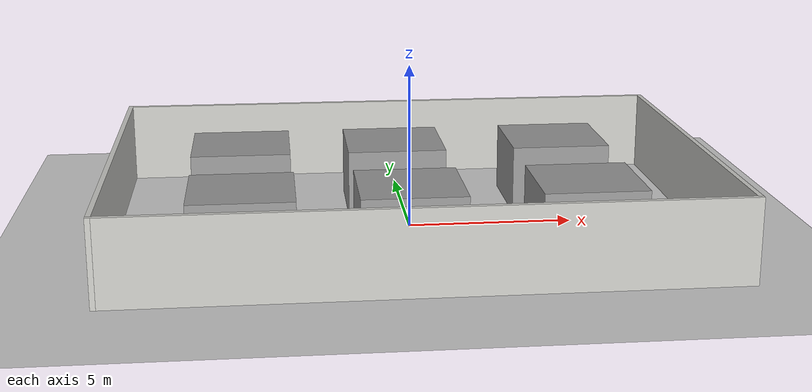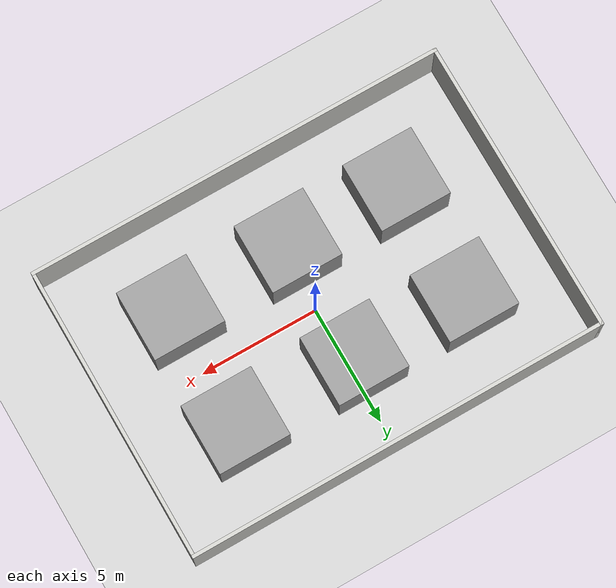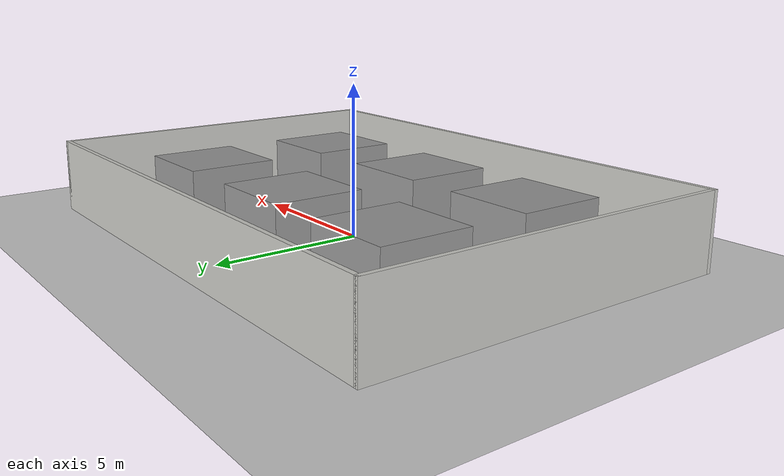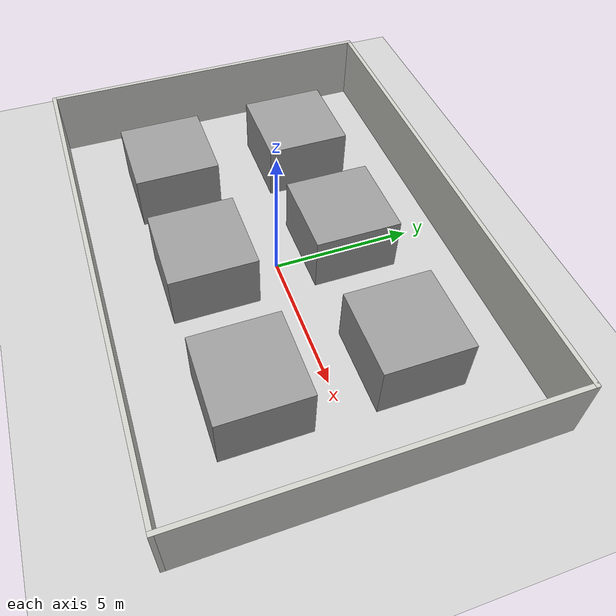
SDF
<sdf version="1.7">
 <world name="default">
  <light name="sun" type="directional">
   <pose>0 0 10 0 -0 0</pose>
   <diffuse>0.8 0.8 0.8 1</diffuse>
   <specular>0.2 0.2 0.2 1</specular>
   <attenuation>
    <range>1000</range>
    <constant>0.9</constant>
    <linear>0.01</linear>
    <quadratic>0.001</quadratic>
   </attenuation>
   <direction>-0.5 0.1 -0.9</direction>
   <spot><inner_angle>0</inner_angle><outer_angle>0</outer_angle><falloff>0</falloff></spot>
  </light>
  <model name="ground_plane">
   <static>1</static>
   <link name="link">
    <collision name="collision">
     <geometry><plane><normal>0 0 1</normal><size>100 100</size></plane></geometry>
     <surface><friction><ode><mu>100</mu><mu2>50</mu2></ode></friction></surface>
    </collision>
    <visual name="visual">
     <cast_shadows>0</cast_shadows>
     <geometry><plane><normal>0 0 1</normal><size>100 100</size></plane></geometry>
     <material>
      <script><uri>file://media/materials/scripts/gazebo.material</uri><name>Gazebo/Grey</name></script>
     </material>
    </visual>
   </link>
  </model>
  <gravity>0 0 -9.8</gravity>
  <magnetic_field>6e-06 2.3e-05 -4.2e-05</magnetic_field>
  <atmosphere type="adiabatic"/>
  <physics type="ode">
   <max_step_size>0.001</max_step_size>
   <real_time_factor>1</real_time_factor>
   <real_time_update_rate>1000</real_time_update_rate>
  </physics>
  <scene><ambient>0.4 0.4 0.4 1</ambient><background>0.7 0.7 0.7 1</background><shadows>1</shadows></scene>
  <audio><device>default</device></audio>
  <spherical_coordinates>
   <surface_model>EARTH_WGS84</surface_model>
   <latitude_deg>0</latitude_deg>
   <longitude_deg>0</longitude_deg>
   <elevation>0</elevation>
   <heading_deg>0</heading_deg>
  </spherical_coordinates>
  <model name="square3_small">
   <pose>-0.026682 0.054218 0 0 -0 0</pose>
   <link name="Wall_19">
    <collision name="Wall_19_Collision">
     <geometry><box><size>17.75 0.15 2.5</size></box></geometry>
     <pose>0 0 1.25 0 -0 0</pose>
    </collision>
    <visual name="Wall_19_Visual">
     <pose>0 0 1.25 0 -0 0</pose>
     <geometry><box><size>17.75 0.15 2.5</size></box></geometry>
     <material>
      <script><uri>file://media/materials/scripts/gazebo.material</uri><name>Gazebo/CeilingTiled</name></script>
      <ambient>0.921569 0.807843 0.615686 1</ambient>
     </material>
     <meta><layer>0</layer></meta>
    </visual>
    <pose>-0 6.175 0 0 -0 0</pose>
   </link>
   <link name="Wall_20">
    <collision name="Wall_20_Collision">
     <geometry><box><size>12.5 0.15 2.5</size></box></geometry>
     <pose>0 0 1.25 0 -0 0</pose>
    </collision>
    <visual name="Wall_20_Visual">
     <pose>0 0 1.25 0 -0 0</pose>
     <geometry><box><size>12.5 0.15 2.5</size></box></geometry>
     <material>
      <script><uri>file://media/materials/scripts/gazebo.material</uri><name>Gazebo/CeilingTiled</name></script>
      <ambient>0.921569 0.807843 0.615686 1</ambient>
     </material>
     <meta><layer>0</layer></meta>
    </visual>
    <pose>8.8 0 0 0 -0 -1.5708</pose>
   </link>
   <link name="Wall_21">
    <collision name="Wall_21_Collision">
     <geometry><box><size>17.75 0.15 2.5</size></box></geometry>
     <pose>0 0 1.25 0 -0 0</pose>
    </collision>
    <visual name="Wall_21_Visual">
     <pose>0 0 1.25 0 -0 0</pose>
     <geometry><box><size>17.75 0.15 2.5</size></box></geometry>
     <material>
      <script><uri>file://media/materials/scripts/gazebo.material</uri><name>Gazebo/CeilingTiled</name></script>
      <ambient>0.921569 0.807843 0.615686 1</ambient>
     </material>
     <meta><layer>0</layer></meta>
    </visual>
    <pose>-0 -6.175 0 0 -0 3.14159</pose>
   </link>
   <link name="Wall_22">
    <collision name="Wall_22_Collision">
     <geometry><box><size>12.5 0.15 2.5</size></box></geometry>
     <pose>0 0 1.25 0 -0 0</pose>
    </collision>
    <visual name="Wall_22_Visual">
     <pose>0 0 1.25 0 -0 0</pose>
     <geometry><box><size>12.5 0.15 2.5</size></box></geometry>
     <material>
      <script><uri>file://media/materials/scripts/gazebo.material</uri><name>Gazebo/CeilingTiled</name></script>
      <ambient>0.921569 0.807843 0.615686 1</ambient>
     </material>
     <meta><layer>0</layer></meta>
    </visual>
    <pose>-8.8 0 0 0 -0 1.5708</pose>
   </link>
   <static>1</static>
  </model>
  <model name="unit_box">
   <pose>-5.0851 2.47216 1.04653 3e-06 -0 0.000171</pose>
   <link name="link">
    <inertial>
     <mass>1</mass>
     <inertia>
      <ixx>0.166667</ixx>
      <ixy>0</ixy>
      <ixz>0</ixz>
      <iyy>0.166667</iyy>
      <iyz>0</iyz>
      <izz>0.166667</izz>
     </inertia>
    </inertial>
    <collision name="collision"><geometry><box><size>3.03407 2.99673 2.09308</size></box></geometry></collision>
    <visual name="visual">
     <geometry><box><size>3.03407 2.99673 2.09308</size></box></geometry>
     <material>
      <script><name>Gazebo/Grey</name><uri>file://media/materials/scripts/gazebo.material</uri></script>
     </material>
    </visual>
   </link>
  </model>
  <model name="unit_box_clone">
   <pose>-5.02749 -2.5259 1.04653 -3e-06 0 0.000572</pose>
   <link name="link">
    <inertial>
     <mass>1</mass>
     <inertia>
      <ixx>0.166667</ixx>
      <ixy>0</ixy>
      <ixz>0</ixz>
      <iyy>0.166667</iyy>
      <iyz>0</iyz>
      <izz>0.166667</izz>
     </inertia>
    </inertial>
    <collision name="collision"><geometry><box><size>3.03407 2.99673 2.09308</size></box></geometry></collision>
    <visual name="visual">
     <geometry><box><size>3.03407 2.99673 2.09308</size></box></geometry>
     <material>
      <script><name>Gazebo/Grey</name><uri>file://media/materials/scripts/gazebo.material</uri></script>
     </material>
    </visual>
   </link>
  </model>
  <model name="unit_box_clone_0">
   <pose>-0.26277 2.48601 1.04653 -3e-06 -0 0.000654</pose>
   <link name="link">
    <inertial>
     <mass>1</mass>
     <inertia>
      <ixx>0.166667</ixx>
      <ixy>0</ixy>
      <ixz>0</ixz>
      <iyy>0.166667</iyy>
      <iyz>0</iyz>
      <izz>0.166667</izz>
     </inertia>
    </inertial>
    <collision name="collision"><geometry><box><size>3.03407 2.99673 2.09308</size></box></geometry></collision>
    <visual name="visual">
     <geometry><box><size>3.03407 2.99673 2.09308</size></box></geometry>
     <material>
      <script><name>Gazebo/Grey</name><uri>file://media/materials/scripts/gazebo.material</uri></script>
     </material>
    </visual>
   </link>
  </model>
  <model name="unit_box_clone_1">
   <pose>-0.24172 -2.51499 1.04654 -1e-06 -0 0.000614</pose>
   <link name="link">
    <inertial>
     <mass>1</mass>
     <inertia>
      <ixx>0.166667</ixx>
      <ixy>0</ixy>
      <ixz>0</ixz>
      <iyy>0.166667</iyy>
      <iyz>0</iyz>
      <izz>0.166667</izz>
     </inertia>
    </inertial>
    <collision name="collision"><geometry><box><size>3.03407 2.99673 2.09308</size></box></geometry></collision>
    <visual name="visual">
     <geometry><box><size>3.03407 2.99673 2.09308</size></box></geometry>
     <material>
      <script><name>Gazebo/Grey</name><uri>file://media/materials/scripts/gazebo.material</uri></script>
     </material>
    </visual>
   </link>
  </model>
  <model name="unit_box_clone_2">
   <pose>4.90036 2.51058 1.04653 3e-06 -0 0.000574</pose>
   <link name="link">
    <inertial>
     <mass>1</mass>
     <inertia>
      <ixx>0.166667</ixx>
      <ixy>0</ixy>
      <ixz>0</ixz>
      <iyy>0.166667</iyy>
      <iyz>0</iyz>
      <izz>0.166667</izz>
     </inertia>
    </inertial>
    <collision name="collision"><geometry><box><size>3.03407 2.99673 2.09308</size></box></geometry></collision>
    <visual name="visual">
     <geometry><box><size>3.03407 2.99673 2.09308</size></box></geometry>
     <material>
      <script><name>Gazebo/Grey</name><uri>file://media/materials/scripts/gazebo.material</uri></script>
     </material>
    </visual>
   </link>
  </model>
  <model name="unit_box_clone_3">
   <pose>4.88984 -2.47986 1.04654 1e-06 -0 0.000533</pose>
   <link name="link">
    <inertial>
     <mass>1</mass>
     <inertia>
      <ixx>0.166667</ixx>
      <ixy>0</ixy>
      <ixz>0</ixz>
      <iyy>0.166667</iyy>
      <iyz>0</iyz>
      <izz>0.166667</izz>
     </inertia>
    </inertial>
    <collision name="collision"><geometry><box><size>3.03407 2.99673 2.09308</size></box></geometry></collision>
    <visual name="visual">
     <geometry><box><size>3.03407 2.99673 2.09308</size></box></geometry>
     <material>
      <script><name>Gazebo/Grey</name><uri>file://media/materials/scripts/gazebo.material</uri></script>
     </material>
    </visual>
   </link>
  </model>
 </world>
</sdf>
